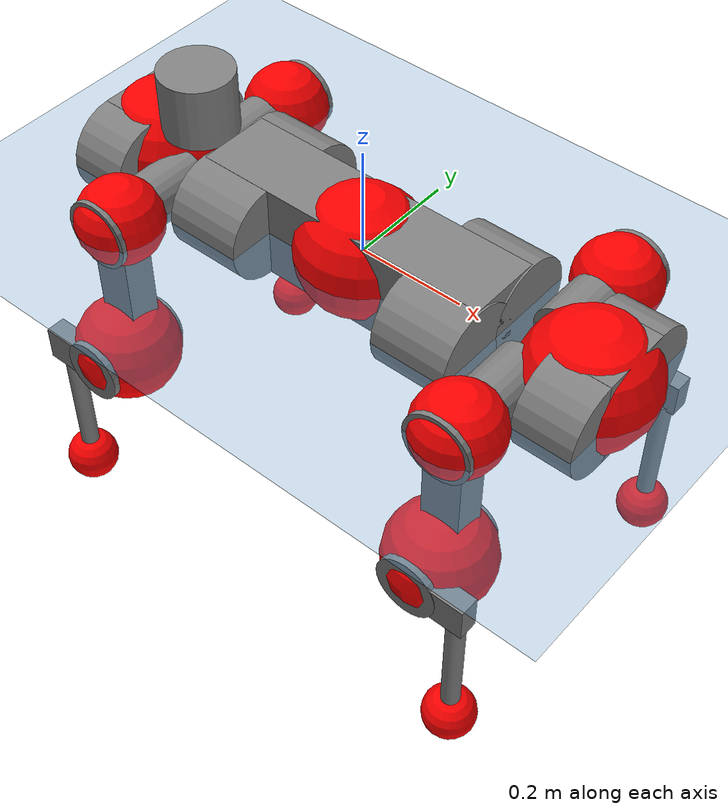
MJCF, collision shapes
<mujoco model="anymal_c">
  <compiler angle="radian" assetdir="assets" balanceinertia="true" inertiafromgeom="false"/>

  <option timestep="0.005" density="1.2" viscosity="2e-05"/>

  <size nkey="1"/>

  <visual>
    <quality shadowsize="8192"/>
    <map shadowclip="0.5"/>
  </visual>

  <default>
    <default class="/">
      <material specular="0" shininess="0.25"/>
      <geom contype="0" conaffinity="0" group="1" solref="-1000 -80"/>
      <site size="0.01 0.005 0.005" group="5"/>
      <general forcelimited="true" forcerange="-80 80" biastype="affine" gainprm="80" biasprm="0 -80 -2"/>
      <default class="anymal_c">
        <joint armature="0.01" damping="0.01" frictionloss="0.1"/>
        <default class="visual">
          <geom type="mesh" group="2"/>
          <default class="visual_zflip"/>
        </default>
        <default class="collision">
          <geom type="cylinder" group="3"/>
          <default class="foot">
            <geom size="0.03 0 0" type="sphere" condim="6" priority="1" friction="0.8 0.02 0.01" solimp="0.015 1 0.03"/>
          </default>
        </default>
      </default>
      <default class="reward_collision_sphere">
        <geom group="5" rgba="1 0 0 1"/>
      </default>
    </default>
  </default>

  <asset>
    <texture type="skybox" colorspace="auto" name="//unnamed_texture_0" builtin="gradient" rgb1="0.95 0.95 0.95" rgb2="0.95 0.95 0.95" width="100" height="600"/>
    <texture type="2d" colorspace="auto" name="texplane" builtin="checker" rgb1="0.345 0.575 0.748" rgb2="0.345 0.575 0.748" markrgb="1 1 1" width="512" height="512"/>
    <texture type="2d" colorspace="linear" name="base" file="base.png"/>
    <texture type="2d" colorspace="linear" name="top_shell" file="top_shell.png"/>
    <texture type="2d" colorspace="linear" name="bottom_shell" file="bottom_shell.png"/>
    <texture type="2d" colorspace="linear" name="remote" file="remote.png"/>
    <texture type="2d" colorspace="linear" name="hatch" file="hatch.png"/>
    <texture type="2d" colorspace="linear" name="handle" file="handle.png"/>
    <texture type="2d" colorspace="linear" name="face" file="face.png"/>
    <texture type="2d" colorspace="linear" name="battery" file="battery.png"/>
    <texture type="2d" colorspace="linear" name="lidar_cage" file="lidar_cage.png"/>
    <texture type="2d" colorspace="linear" name="depth_camera" file="depth_camera.png"/>
    <texture type="2d" colorspace="linear" name="wide_angle_camera" file="wide_angle_camera.png"/>
    <texture type="2d" colorspace="linear" name="lidar" file="lidar.png"/>
    <texture type="2d" colorspace="linear" name="drive" file="drive.png"/>
    <texture type="2d" colorspace="linear" name="hip_l" file="hip_l.png"/>
    <texture type="2d" colorspace="linear" name="shank_l" file="shank_l.png"/>
    <texture type="2d" colorspace="linear" name="foot" file="foot.png"/>
    <texture type="2d" colorspace="linear" name="thigh" file="thigh.png"/>
    <texture type="2d" colorspace="linear" name="shank_r" file="shank_r.png"/>
    <texture type="2d" colorspace="linear" name="hip_r" file="hip_r.png"/>
    <material name="MatPlane" class="/" texture="texplane" texuniform="true" texrepeat="2 2" specular="0.9" shininess="0.5"/>
    <material name="black_plastic" class="/" rgba="0.007 0.007 0.007 1"/>
    <material name="green" class="/" rgba="0.052 0.178 0.033 1"/>
    <material name="red" class="/" rgba="0.178 0.006 0.005 1"/>
    <material name="yellow" class="/" rgba="0.178 0.119 0.006 1"/>
    <material name="lwl" class="/" rgba="0.8 0.8 0.8 1"/>
    <material name="base" class="/" texture="base"/>
    <material name="top_shell" class="/" texture="top_shell"/>
    <material name="bottom_shell" class="/" texture="bottom_shell"/>
    <material name="hip_l" class="/" texture="hip_l"/>
    <material name="thigh" class="/" texture="thigh"/>
    <material name="shank_l" class="/" texture="shank_l"/>
    <material name="foot" class="/" texture="foot"/>
    <material name="hip_r" class="/" texture="hip_r"/>
    <material name="shank" class="/" texture="shank_r"/>
    <material name="hatch" class="/" texture="hatch"/>
    <material name="remote" class="/" texture="remote"/>
    <material name="handle" class="/" texture="handle"/>
    <material name="face" class="/" texture="face"/>
    <material name="depth_camera" class="/" texture="depth_camera"/>
    <material name="wide_angle_camera" class="/" texture="wide_angle_camera"/>
    <material name="battery" class="/" texture="battery"/>
    <material name="lidar_cage" class="/" texture="lidar_cage"/>
    <material name="lidar" class="/" texture="lidar"/>
    <material name="drive" class="/" texture="drive"/>
    <mesh name="base_0" class="/" file="base_0.obj"/>
    <mesh name="base_1" class="/" file="base_1.obj"/>
    <mesh name="base_2" class="/" file="base_2.obj"/>
    <mesh name="base_3" class="/" file="base_3.obj"/>
    <mesh name="base_4" class="/" file="base_4.obj"/>
    <mesh name="base_5" class="/" file="base_5.obj"/>
    <mesh name="top_shell" class="/" file="top_shell.obj"/>
    <mesh name="bottom_shell" class="/" file="bottom_shell.obj"/>
    <mesh name="remote" class="/" file="remote.obj"/>
    <mesh name="handle" class="/" file="handle.obj"/>
    <mesh name="face" class="/" file="face.obj"/>
    <mesh name="wide_angle_camera" class="/" file="wide_angle_camera.obj"/>
    <mesh name="depth_camera" class="/" file="depth_camera.obj"/>
    <mesh name="battery" class="/" file="battery.obj"/>
    <mesh name="lidar_cage" class="/" file="lidar_cage.obj"/>
    <mesh name="lidar" class="/" file="lidar.obj"/>
    <mesh name="drive" class="/" file="drive.obj"/>
    <mesh name="hip_l" class="/" file="hip_l.obj"/>
    <mesh name="thigh" class="/" file="thigh.obj"/>
    <mesh name="shank_l" class="/" file="shank_l.obj"/>
    <mesh name="foot" class="/" file="foot.obj"/>
    <mesh name="hip_r" class="/" file="hip_r.obj"/>
    <mesh name="hatch" class="/" file="hatch.obj"/>
    <mesh name="shank_r" class="/" file="shank_r.obj"/>
  </asset>

  <worldbody>
    <geom name="floor" class="/" size="100 100 0.125" type="plane" group="0" material="MatPlane"/>
    <light name="toplight_shadow" class="/" pos="0 0 5" dir="0.0990148 0.0990148 -0.990148" type="directional" ambient="0.04 0.04 0.04" diffuse="0.55 0.55 0.55" specular="0.12 0.12 0.12"/>
    <light name="toplight_fill" class="/" pos="0 0 5" dir="0.0990148 0.0990148 -0.990148" type="directional" castshadow="false" ambient="0.04 0.04 0.04" diffuse="0.3 0.3 0.3" specular="0.08 0.08 0.08"/>
    <body name="trunk" childclass="anymal_c" pos="-0.000359462 -4.78745e-05 -0.000154336" quat="1 -0.000180257 8.96837e-05 -0.000248366">
      <inertial pos="0.00114898 -0.000129359 0.049175" quat="0.499426 0.498794 0.499695 0.502079" mass="18.1338" diaginertia="0.632261 0.51183 0.200003"/>
      <joint name="//unnamed_joint_0" type="free" armature="0" damping="0" frictionloss="0"/>
      <geom name="//unnamed_geom_1" class="visual" material="green" mesh="base_0"/>
      <geom name="//unnamed_geom_2" class="visual" material="yellow" mesh="base_1"/>
      <geom name="//unnamed_geom_3" class="visual" material="red" mesh="base_2"/>
      <geom name="//unnamed_geom_4" class="visual" material="black_plastic" mesh="base_3"/>
      <geom name="//unnamed_geom_5" class="visual" material="lwl" mesh="base_4"/>
      <geom name="//unnamed_geom_6" class="visual" material="base" mesh="base_5"/>
      <geom name="trunk_1" class="collision" size="0.28457 0.0686893 0.0883148" type="box"/>
      <geom name="trunk_2" class="collision" size="0.0883148 0.0711425" pos="0.217204 0.0673539 0" quat="0.707107 0 0.707107 0"/>
      <geom name="trunk_3" class="collision" size="0.0883148 0.0711425" pos="-0.217204 0.0673539 0" quat="0.707107 0 0.707107 0"/>
      <geom name="trunk_4" class="collision" size="0.0883148 0.0711425" pos="0.217204 -0.0673539 0" quat="0.707107 0 0.707107 0"/>
      <geom name="trunk_5" class="collision" size="0.0883148 0.0711425" pos="-0.217204 -0.0673539 0" quat="0.707107 0 0.707107 0"/>
      <geom name="//unnamed_geom_12" class="visual" material="top_shell" mesh="top_shell"/>
      <geom name="//unnamed_geom_13" class="visual" material="bottom_shell" mesh="bottom_shell"/>
      <geom name="//unnamed_geom_14" class="visual" material="remote" mesh="remote"/>
      <geom name="//unnamed_geom_15" class="visual" material="handle" mesh="handle"/>
      <geom name="//unnamed_geom_16" class="visual" pos="0.413936 0 0" quat="1 0 0 0" material="face" mesh="face"/>
      <geom name="trunk_6" class="collision" size="0.0539702 0.0686893 0.0883148" pos="0.468862 0 0" type="box"/>
      <geom name="//unnamed_geom_18" class="collision" size="0.0883148 0.0539702" pos="0.468862 0.0673539 0" quat="0.707107 0 0.707107 0"/>
      <geom name="//unnamed_geom_19" class="collision" size="0.0883148 0.0539702" pos="0.468862 -0.0673539 0" quat="0.707107 0 0.707107 0"/>
      <geom name="//unnamed_geom_20" class="visual" pos="0.461022 0 -0.0285843" quat="0.965926 0 0.258819 0" material="depth_camera" mesh="depth_camera"/>
      <geom name="//unnamed_geom_21" class="visual" pos="0.512302 0 0.0147153" material="wide_angle_camera" mesh="wide_angle_camera"/>
      <geom name="//unnamed_geom_22" class="visual_zflip" pos="-0.413936 0 0" quat="0 0 0 1" material="face" mesh="face"/>
      <geom name="trunk_7" class="collision" size="0.0539702 0.0686893 0.0883148" pos="-0.468862 0 0" quat="0 0 0 1" type="box"/>
      <geom name="//unnamed_geom_24" class="collision" size="0.0883148 0.0539702" pos="-0.468862 -0.0673539 0" quat="0 -0.707107 0 0.707107"/>
      <geom name="//unnamed_geom_25" class="collision" size="0.0883148 0.0539702" pos="-0.468862 0.0673539 0" quat="0 -0.707107 0 0.707107"/>
      <geom name="//unnamed_geom_26" class="visual" pos="-0.461022 0 -0.0285843" quat="0 -0.258819 0 0.965926" material="depth_camera" mesh="depth_camera"/>
      <geom name="//unnamed_geom_27" class="visual_zflip" pos="-0.512302 0 0.0147153" quat="0 0 0 1" material="wide_angle_camera" mesh="wide_angle_camera"/>
      <geom name="//unnamed_geom_28" class="visual" material="battery" mesh="battery"/>
      <geom name="//unnamed_geom_29" class="visual" pos="0 0.0730909 0.0286748" quat="0.683013 -0.183013 0.183013 0.683013" material="depth_camera" mesh="depth_camera"/>
      <geom name="//unnamed_geom_30" class="visual" pos="0 -0.0730909 0.0286748" quat="0.683013 0.183013 0.183013 -0.683013" material="depth_camera" mesh="depth_camera"/>
      <geom name="//unnamed_geom_31" class="visual" pos="-0.363505 0 0.0722496" quat="1 0 0 0" material="lidar_cage" mesh="lidar_cage"/>
      <geom name="trunk_8" class="collision" size="0.0686893 0.0588765" pos="-0.363505 0 0.131229"/>
      <geom name="//unnamed_geom_33" class="visual" pos="-0.363505 -1.43168e-05 0.139781" quat="0.707107 0 0 -0.707107" material="lidar" mesh="lidar"/>
      <geom name="//unnamed_geom_34" class="visual" pos="0.299492 0.100076 -3.58608e-10" quat="0.258819 0.965926 0 0" material="drive" mesh="drive"/>
      <geom name="//unnamed_geom_35" class="visual" pos="0.299492 -0.100076 3.58608e-10" quat="0.258819 -0.965926 0 0" material="drive" mesh="drive"/>
      <geom name="//unnamed_geom_36" class="visual" pos="-0.299492 0.100076 3.58608e-10" quat="0 0 0.965926 -0.258819" material="drive" mesh="drive"/>
      <geom name="//unnamed_geom_37" class="visual" pos="-0.299492 -0.100076 -3.58608e-10" quat="0 0 -0.965926 -0.258819" material="drive" mesh="drive"/>
      <geom name="//unnamed_geom_38" class="visual" pos="0.115842 0 0.0717581" quat="1 0 0 0" material="hatch" mesh="hatch"/>
      <geom name="//unnamed_geom_39" class="reward_collision_sphere" size="0.117753"/>
      <geom name="//unnamed_geom_40" class="reward_collision_sphere" size="0.117753" pos="0.449388 0 0"/>
      <geom name="//unnamed_geom_41" class="reward_collision_sphere" size="0.117753" pos="-0.449388 0 0"/>
      <site name="imu" pos="0.250359 0.00776634 0.0437044" size="0.00981276"/>
      <camera name="track" pos="0 -1.9244 0" quat="0.707107 0.707107 0 0" mode="trackcom"/>
      <camera name="ego_camera" pos="0.449388 0 -0.0393195" quat="-0.5 -0.5 0.5 0.5"/>
      <body name="LF_HIP" pos="0.300576 0.101096 0.000738473" quat="0.258777 0.965937 -0.000111599 3.49101e-05">
        <inertial pos="0.0567263 -0.0137734 -0.00785103" quat="-0.127742 0.709752 -0.13522 0.679448" mass="2.56404" diaginertia="0.0057518 0.00401951 0.00298165"/>
        <joint name="LF_HAA" pos="0 0 0" axis="1 -0.000533624 -1.71352e-05" range="-0.718005 0.479407" armature="0.00970691" damping="0.00582417" frictionloss="0.1023"/>
        <geom name="//unnamed_geom_42" class="visual" pos="0 -2.10953e-05 3.46488e-06" quat="0.258819 -0.965926 0 0" material="hip_l" mesh="hip_l"/>
        <geom name="//unnamed_geom_43" class="visual" pos="0.0598185 -0.0720105 -0.041729" quat="0.183013 -0.683013 0.683013 0.183013" material="drive" mesh="drive"/>
        <geom name="//unnamed_geom_44" class="collision" size="0.0490638 0.0686893" pos="0.0598185 -0.0115077 -0.00678753" quat="-0.353553 -0.612372 0.612372 -0.353553"/>
        <body name="LF_THIGH" pos="0.0610083 -0.0698222 -0.0420193" quat="0.183025 -0.68299 0.683046 0.182962">
          <inertial pos="0.0306729 9.25981e-05 -0.24234" quat="0.993029 -0.00681178 -0.0826965 0.083717" mass="2.93617" diaginertia="0.0300895 0.0244435 0.00385511"/>
          <joint name="LF_HFE" pos="0 0 0" axis="0.999998 -0.00151742 0.00116196" stiffness="0.00302314" range="-3.14587 3.12071" armature="0.00961103" damping="0.00595036" frictionloss="0.102613"/>
          <geom name="//unnamed_geom_45" class="visual" pos="0.000725038 1.14249e-06 0" quat="0.707107 0 0 -0.707107" material="thigh" mesh="thigh"/>
          <geom name="//unnamed_geom_46" class="collision" size="0.0637829 0.039251" pos="0.0399456 0 0" quat="0.5 0.5 -0.5 -0.5"/>
          <geom name="//unnamed_geom_47" class="collision" size="0.0367978 0.0294383 0.138668" pos="0.0299592 0 -0.13891" quat="0.707107 0 0 -0.707107" type="box"/>
          <geom name="//unnamed_geom_48" class="visual" pos="0.100164 0 -0.280151" quat="1 0 0 0" material="drive" mesh="drive"/>
          <geom name="//unnamed_geom_49" class="collision" size="0.0490638 0.0686893" pos="0.0302588 0 -0.280151" quat="0.707107 0 0.707107 0"/>
          <geom name="//unnamed_geom_50" class="reward_collision_sphere" size="0.078502" pos="0.024966 0 0"/>
          <body name="LF_SHANK" pos="0.100853 -0.000400558 -0.2804" quat="1 0.000178543 -0.000121731 -2.57713e-05">
            <inertial pos="0.00543453 -0.0584114 -0.0786184" quat="0.992919 -0.116047 -0.00189134 -0.0253136" mass="0.552625" diaginertia="0.0100707 0.00756448 0.00102762"/>
            <joint name="LF_KFE" pos="0 0 0" axis="1 -0.000581077 0.000551787" range="-3.15805 3.14265" armature="0.00979219" damping="0.00896187" frictionloss="0.0991443"/>
            <geom name="//unnamed_geom_51" class="visual" pos="0.000236419 0.0012606 0" quat="0.707107 0 0 -0.707107" material="shank_l" mesh="shank_l"/>
            <geom name="LF_kfe_act" class="collision" size="0.0588765 0.0196255" pos="0.0199728 0 0" quat="0.5 0.5 -0.5 -0.5"/>
            <geom name="//unnamed_geom_53" class="collision" size="0.0564224 0.0331181 0.0186442" pos="0.0199728 -0.0553255 0" quat="0.5 0.5 -0.5 -0.5" type="box"/>
            <geom name="//unnamed_geom_54" class="visual" pos="0.0130322 -0.0842192 -0.33222" quat="0.382683 0 0 -0.92388" material="foot" mesh="foot"/>
            <geom name="LF_calf" class="collision" size="0.0171723 0.138607" pos="0.0130323 -0.0846254 -0.16611" quat="0.707107 0 0 -0.707107"/>
            <geom name="LF_foot" class="foot" size="0.030157" pos="0.0130323 -0.0846254 -0.310103" quat="0.707107 0 0 -0.707107"/>
            <geom name="//unnamed_geom_57" class="reward_collision_sphere" size="0.0981276" pos="-0.049932 0 0"/>
            <geom name="//unnamed_geom_58" class="reward_collision_sphere" size="0.0490638" pos="0.0130323 -0.0846254 -0.310103"/>
            <site name="LF_foot" class="foot" pos="0.0130323 -0.0846254 -0.310103" quat="0.707107 0 0 -0.707107" size="0.00981276"/>
          </body>
        </body>
      </body>
      <body name="RF_HIP" pos="0.299672 -0.10061 0.000109587" quat="0.258851 -0.965917 -3.9682e-06 8.31576e-06">
        <inertial pos="0.057617 0.014037 -0.00736949" quat="0.137013 0.678682 0.131583 0.70944" mass="2.64972" diaginertia="0.00588325 0.00409532 0.00305963"/>
        <joint name="RF_HAA" pos="0 0 0" axis="0.999992 0.00177204 -0.00364029" range="-0.485782 0.722584" armature="0.00988258" damping="0.0113845" frictionloss="0.0967992"/>
        <geom name="//unnamed_geom_59" class="visual" pos="0 2.10951e-05 3.46487e-06" quat="0.258819 0.965926 0 0" material="hip_r" mesh="hip_r"/>
        <geom name="//unnamed_geom_60" class="visual" pos="0.0598185 0.0720105 -0.041729" quat="0.183013 0.683013 0.683013 -0.183013" material="drive" mesh="drive"/>
        <geom name="//unnamed_geom_61" class="collision" size="0.0490638 0.0686893" pos="0.0598185 0.0115077 -0.00678753" quat="-0.353553 0.612372 0.612372 0.353553"/>
        <body name="RF_THIGH" pos="0.0592618 0.0703578 -0.0416198" quat="0.18319 0.683064 0.682945 -0.182896">
          <inertial pos="0.0313148 -0.000113604 -0.240393" quat="0.993132 -0.0016108 -0.0784549 0.0867854" mass="2.86521" diaginertia="0.0301956 0.0245866 0.00383582"/>
          <joint name="RF_HFE" pos="0 0 0" axis="1 -0.000340627 -0.000246071" stiffness="0.00887718" range="-3.1442 3.12997" armature="0.0102209" damping="0.0103014" frictionloss="0.0955654"/>
          <geom name="//unnamed_geom_62" class="visual" pos="0.000725038 1.14249e-06 0" quat="0.707107 0 0 -0.707107" material="thigh" mesh="thigh"/>
          <geom name="//unnamed_geom_63" class="collision" size="0.0637829 0.039251" pos="0.0399456 0 0" quat="0.5 0.5 0.5 0.5"/>
          <geom name="//unnamed_geom_64" class="collision" size="0.0367978 0.0294383 0.138668" pos="0.0299592 0 -0.13891" quat="0.707107 0 0 0.707107" type="box"/>
          <geom name="//unnamed_geom_65" class="visual" pos="0.100164 0 -0.280151" quat="1 0 0 0" material="drive" mesh="drive"/>
          <geom name="//unnamed_geom_66" class="collision" size="0.0490638 0.0686893" pos="0.0302588 0 -0.280151" quat="0.707107 0 0.707107 0"/>
          <geom name="//unnamed_geom_67" class="reward_collision_sphere" size="0.078502" pos="0.024966 0 0"/>
          <body name="RF_SHANK" pos="0.100926 0.000139261 -0.280431" quat="1 -0.000366526 0.000171575 2.72722e-05">
            <inertial pos="0.00628218 0.0589341 -0.079076" quat="0.992905 0.115358 0.00038239 0.0288475" mass="0.546104" diaginertia="0.00996874 0.00763439 0.00101931"/>
            <joint name="RF_KFE" pos="0 0 0" axis="0.999992 -0.00256661 0.00316613" range="-3.14115 3.15507" armature="0.00958582" damping="0.0100613" frictionloss="0.0948993"/>
            <geom name="//unnamed_geom_68" class="visual" pos="0.000236418 -0.0012606 0" quat="0.707107 0 0 0.707107" material="shank" mesh="shank_r"/>
            <geom name="RF_kfe_act" class="collision" size="0.0588765 0.0196255" pos="0.0199728 0 0" quat="0.5 0.5 0.5 0.5"/>
            <geom name="//unnamed_geom_70" class="collision" size="0.0564224 0.0331181 0.0186442" pos="0.0199728 0.0553255 0" quat="0.5 0.5 0.5 0.5" type="box"/>
            <geom name="//unnamed_geom_71" class="visual" pos="0.0130323 0.0842192 -0.33222" quat="0.382683 0 0 0.92388" material="foot" mesh="foot"/>
            <geom name="RF_calf" class="collision" size="0.0171723 0.138607" pos="0.0130323 0.0846254 -0.16611" quat="0.707107 0 0 0.707107"/>
            <geom name="RF_foot" class="foot" size="0.0290698" pos="0.0130323 0.0846254 -0.310103" quat="0.707107 0 0 0.707107"/>
            <geom name="//unnamed_geom_74" class="reward_collision_sphere" size="0.0981276" pos="-0.049932 0 0"/>
            <geom name="//unnamed_geom_75" class="reward_collision_sphere" size="0.0490638" pos="0.0130323 0.0846254 -0.310103"/>
            <site name="RF_foot" class="foot" pos="0.0130323 0.0846254 -0.310103" quat="0.707107 0 0 0.707107" size="0.00981276"/>
          </body>
        </body>
      </body>
      <body name="LH_HIP" pos="-0.298739 0.101026 0.000271522" quat="0.000192662 -0.000165368 0.965922 -0.258835">
        <inertial pos="0.0568016 0.013671 -0.00886157" quat="0.136294 0.680413 0.127551 0.708655" mass="2.64197" diaginertia="0.00594489 0.00405951 0.00307275"/>
        <joint name="LH_HAA" pos="0 0 0" axis="1 5.42513e-05 -1.37598e-05" stiffness="0.00141493" range="-0.497173 0.716673" armature="0.00981029" damping="0.00521901" frictionloss="0.0978508"/>
        <geom name="//unnamed_geom_76" class="visual" pos="0 2.10951e-05 3.46487e-06" quat="-0.258819 -0.965926 0 0" material="hip_r" mesh="hip_r"/>
        <geom name="//unnamed_geom_77" class="visual" pos="0.0598185 0.0720105 -0.041729" quat="0.183013 0.683013 0.683013 -0.183013" material="drive" mesh="drive"/>
        <geom name="//unnamed_geom_78" class="collision" size="0.0490638 0.0686893" pos="0.0598185 0.0115077 -0.00678753" quat="-0.353553 0.612372 0.612372 0.353553"/>
        <body name="LH_THIGH" pos="0.059075 0.0706327 -0.0417695" quat="0.183092 0.683061 0.682914 -0.183124">
          <inertial pos="0.0297605 -0.00010248 -0.241921" quat="0.992775 -0.00513108 -0.0800011 0.0892808" mass="2.94603" diaginertia="0.029986 0.0246441 0.00386325"/>
          <joint name="LH_HFE" pos="0 0 0" axis="1 0.000216779 0.000815282" range="-3.12489 3.15689" armature="0.0100591" damping="0.0116905" frictionloss="0.0975941"/>
          <geom name="//unnamed_geom_79" class="visual" pos="0.000725038 1.14249e-06 0" quat="0.707107 0 0 -0.707107" material="thigh" mesh="thigh"/>
          <geom name="//unnamed_geom_80" class="collision" size="0.0637829 0.039251" pos="0.0399456 0 0" quat="0.5 0.5 -0.5 -0.5"/>
          <geom name="//unnamed_geom_81" class="collision" size="0.0367978 0.0294383 0.138668" pos="0.0299592 0 -0.13891" quat="0.707107 0 0 -0.707107" type="box"/>
          <geom name="//unnamed_geom_82" class="visual" pos="0.100164 0 -0.280151" quat="1 0 0 0" material="drive" mesh="drive"/>
          <geom name="//unnamed_geom_83" class="collision" size="0.0490638 0.0686893" pos="0.0302588 0 -0.280151" quat="0.707107 0 0.707107 0"/>
          <geom name="//unnamed_geom_84" class="reward_collision_sphere" size="0.078502" pos="0.024966 0 0"/>
          <body name="LH_SHANK" pos="0.100424 -0.000563405 -0.280061" quat="1 8.01947e-05 3.58478e-06 6.50712e-05">
            <inertial pos="0.00464574 0.058827 -0.0792312" quat="0.993082 0.115042 0.00285405 0.0233378" mass="0.563426" diaginertia="0.0103473 0.00772032 0.00104322"/>
            <joint name="LH_KFE" pos="0 0 0" axis="0.999997 0.00233174 -0.000960041" range="-3.14846 3.15669" armature="0.0100155" damping="0.00866135" frictionloss="0.0996462"/>
            <geom name="//unnamed_geom_85" class="visual" pos="0.000236418 -0.0012606 0" quat="-0.707107 0 0 -0.707107" material="shank" mesh="shank_r"/>
            <geom name="LH_kfe_act" class="collision" size="0.0588765 0.0196255" pos="0.0199728 0 0" quat="0.5 0.5 -0.5 -0.5"/>
            <geom name="//unnamed_geom_87" class="collision" size="0.0564224 0.0331181 0.0186442" pos="0.0199728 0.0553255 0" quat="0.5 0.5 -0.5 -0.5" type="box"/>
            <geom name="//unnamed_geom_88" class="visual" pos="0.0130323 0.0842192 -0.33222" quat="-0.382683 0 0 -0.92388" material="foot" mesh="foot"/>
            <geom name="LH_calf" class="collision" size="0.0171723 0.138607" pos="0.0130323 0.0846254 -0.16611" quat="0.707107 0 0 -0.707107"/>
            <geom name="LH_foot" class="foot" size="0.0295559" pos="0.0130323 0.0846254 -0.310103" quat="0.707107 0 0 -0.707107"/>
            <geom name="//unnamed_geom_91" class="reward_collision_sphere" size="0.0981276" pos="-0.049932 0 0"/>
            <geom name="//unnamed_geom_92" class="reward_collision_sphere" size="0.0490638" pos="0.0130323 0.0846254 -0.310103"/>
            <site name="LH_foot" class="foot" pos="0.0130323 0.0846254 -0.310103" quat="0.707107 0 0 -0.707107" size="0.00981276"/>
          </body>
        </body>
      </body>
      <body name="RH_HIP" pos="-0.298366 -0.0997551 -0.000473625" quat="-5.38662e-07 4.39973e-05 -0.965923 -0.25883">
        <inertial pos="0.0575055 -0.0156582 -0.00904251" quat="-0.130184 0.708642 -0.14083 0.679003" mass="2.58499" diaginertia="0.00574827 0.00401701 0.00297853"/>
        <joint name="RH_HAA" pos="0 0 0" axis="0.999996 -0.00200803 -0.00214022" range="-0.726855 0.474453" armature="0.0100589" damping="0.014584" frictionloss="0.0977929"/>
        <geom name="//unnamed_geom_93" class="visual" pos="0 -2.10953e-05 3.46488e-06" quat="-0.258819 0.965926 0 0" material="hip_l" mesh="hip_l"/>
        <geom name="//unnamed_geom_94" class="visual" pos="0.0598185 -0.0720105 -0.041729" quat="-0.183013 0.683013 -0.683013 -0.183013" material="drive" mesh="drive"/>
        <geom name="//unnamed_geom_95" class="collision" size="0.0490638 0.0686893" pos="0.0598185 -0.0115077 -0.00678753" quat="0.353553 0.612372 -0.612372 0.353553"/>
        <body name="RH_THIGH" pos="0.0604148 -0.0704894 -0.0419702" quat="-0.183063 0.683116 -0.682931 -0.182882">
          <inertial pos="0.0307665 -0.000912289 -0.240914" quat="0.993166 -0.00515831 -0.0806551 0.084198" mass="2.95707" diaginertia="0.030614 0.025001 0.00387426"/>
          <joint name="RH_HFE" pos="0 0 0" axis="0.999997 -0.00203045 -0.00112634" range="-3.15824 3.13812" armature="0.00957978" damping="0.00377427" frictionloss="0.0987283"/>
          <geom name="//unnamed_geom_96" class="visual" pos="0.000725038 1.14249e-06 0" quat="0.707107 0 0 -0.707107" material="thigh" mesh="thigh"/>
          <geom name="//unnamed_geom_97" class="collision" size="0.0637829 0.039251" pos="0.0399456 0 0" quat="0.5 0.5 0.5 0.5"/>
          <geom name="//unnamed_geom_98" class="collision" size="0.0367978 0.0294383 0.138668" pos="0.0299592 0 -0.13891" quat="0.707107 0 0 0.707107" type="box"/>
          <geom name="//unnamed_geom_99" class="visual" pos="0.100164 0 -0.280151" quat="1 0 0 0" material="drive" mesh="drive"/>
          <geom name="//unnamed_geom_100" class="collision" size="0.0490638 0.0686893" pos="0.0302588 0 -0.280151" quat="0.707107 0 0.707107 0"/>
          <geom name="//unnamed_geom_101" class="reward_collision_sphere" size="0.078502" pos="0.024966 0 0"/>
          <body name="RH_SHANK" pos="0.100096 0.000286853 -0.280452" quat="1 9.41086e-05 -4.80989e-05 2.6954e-05">
            <inertial pos="0.00519431 -0.0582611 -0.0790324" quat="0.992934 -0.116389 -0.00246752 -0.022994" mass="0.556482" diaginertia="0.0101813 0.00761537 0.00103696"/>
            <joint name="RH_KFE" pos="0 0 0" axis="0.999993 0.00366026 0.000179722" range="-3.13147 3.13841" armature="0.00986227" damping="0.0101345" frictionloss="0.0950423"/>
            <geom name="//unnamed_geom_102" class="visual" pos="0.000236419 0.0012606 0" quat="0.707107 0 0 -0.707107" material="shank_l" mesh="shank_l"/>
            <geom name="RH_kfe_act" class="collision" size="0.0588765 0.0196255" pos="0.0199728 0 0" quat="0.5 0.5 0.5 0.5"/>
            <geom name="//unnamed_geom_104" class="collision" size="0.0564224 0.0331181 0.0186442" pos="0.0199728 -0.0553255 0" quat="0.5 0.5 0.5 0.5" type="box"/>
            <geom name="//unnamed_geom_105" class="visual" pos="0.0130322 -0.0842192 -0.33222" quat="0.382683 0 0 -0.92388" material="foot" mesh="foot"/>
            <geom name="RH_calf" class="collision" size="0.0171723 0.138607" pos="0.0130323 -0.0846254 -0.16611" quat="0.707107 0 0 0.707107"/>
            <geom name="RH_foot" class="foot" size="0.0287795" pos="0.0130323 -0.0846254 -0.310103" quat="0.707107 0 0 0.707107"/>
            <geom name="//unnamed_geom_108" class="reward_collision_sphere" size="0.0981276" pos="-0.049932 0 0"/>
            <geom name="//unnamed_geom_109" class="reward_collision_sphere" size="0.0490638" pos="0.0130323 -0.0846254 -0.310103"/>
            <site name="RH_foot" class="foot" pos="0.0130323 -0.0846254 -0.310103" quat="0.707107 0 0 0.707107" size="0.00981276"/>
          </body>
        </body>
      </body>
    </body>
  </worldbody>

  <contact>
    <pair class="/" geom1="floor" geom2="LF_foot" name="//unnamed_contact_0"/>
    <pair class="/" geom1="floor" geom2="RF_foot" name="//unnamed_contact_1"/>
    <pair class="/" geom1="floor" geom2="LH_foot" name="//unnamed_contact_2"/>
    <pair class="/" geom1="floor" geom2="RH_foot" name="//unnamed_contact_3"/>
  </contact>

  <actuator>
    <general name="LF_HAA" class="/" joint="LF_HAA" forcerange="-81.0799 81.0799" gainprm="81.0038" biasprm="0 -81.0038 -1.93883"/>
    <general name="LF_HFE" class="/" joint="LF_HFE" forcerange="-77.097 77.097" gainprm="81.0038" biasprm="0 -81.0038 -1.93883"/>
    <general name="LF_KFE" class="/" joint="LF_KFE" forcerange="-78.5229 78.5229" gainprm="81.0038" biasprm="0 -81.0038 -1.93883"/>
    <general name="RF_HAA" class="/" joint="RF_HAA" forcerange="-78.1971 78.1971" gainprm="81.0038" biasprm="0 -81.0038 -1.93883"/>
    <general name="RF_HFE" class="/" joint="RF_HFE" forcerange="-78.0415 78.0415" gainprm="81.0038" biasprm="0 -81.0038 -1.93883"/>
    <general name="RF_KFE" class="/" joint="RF_KFE" forcerange="-77.2654 77.2654" gainprm="81.0038" biasprm="0 -81.0038 -1.93883"/>
    <general name="LH_HAA" class="/" joint="LH_HAA" forcerange="-79.0596 79.0596" gainprm="81.0038" biasprm="0 -81.0038 -1.93883"/>
    <general name="LH_HFE" class="/" joint="LH_HFE" forcerange="-81.2219 81.2219" gainprm="81.0038" biasprm="0 -81.0038 -1.93883"/>
    <general name="LH_KFE" class="/" joint="LH_KFE" forcerange="-77.6241 77.6241" gainprm="81.0038" biasprm="0 -81.0038 -1.93883"/>
    <general name="RH_HAA" class="/" joint="RH_HAA" forcerange="-79.3263 79.3263" gainprm="81.0038" biasprm="0 -81.0038 -1.93883"/>
    <general name="RH_HFE" class="/" joint="RH_HFE" forcerange="-78.7768 78.7768" gainprm="81.0038" biasprm="0 -81.0038 -1.93883"/>
    <general name="RH_KFE" class="/" joint="RH_KFE" forcerange="-80.1665 80.1665" gainprm="81.0038" biasprm="0 -81.0038 -1.93883"/>
  </actuator>

  <sensor>
    <gyro site="imu" name="imu_angular_velocity"/>
    <velocimeter site="imu" name="imu_linear_velocity"/>
    <framelinvel objtype="site" objname="LF_foot" name="LF_foot_global_linear_velocity"/>
    <framelinvel objtype="site" objname="RF_foot" name="RF_foot_global_linear_velocity"/>
    <framelinvel objtype="site" objname="LH_foot" name="LH_foot_global_linear_velocity"/>
    <framelinvel objtype="site" objname="RH_foot" name="RH_foot_global_linear_velocity"/>
  </sensor>

  <keyframe>
    <key name="home" qpos="0 0 0.55 1 0 0 0 0 0.4 -0.8 0 -0.4 0.8 0 -0.4 0.8 0 0.4 -0.8"/>
  </keyframe>
</mujoco>
